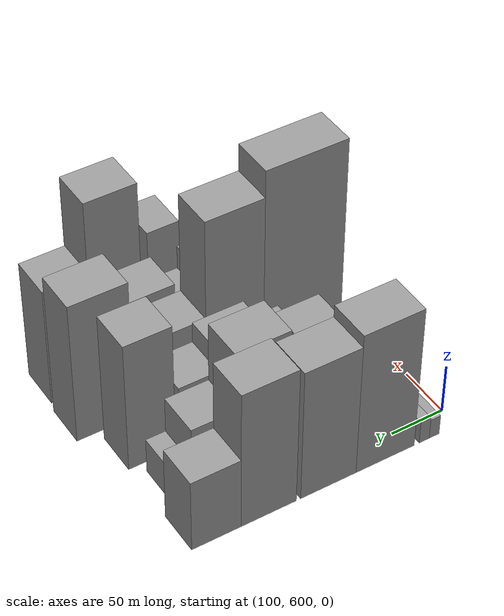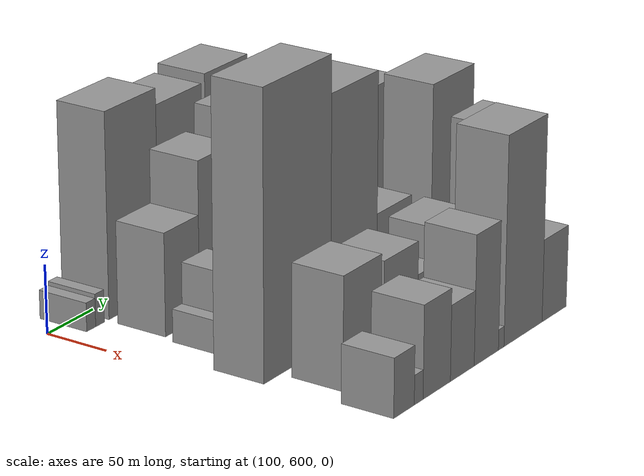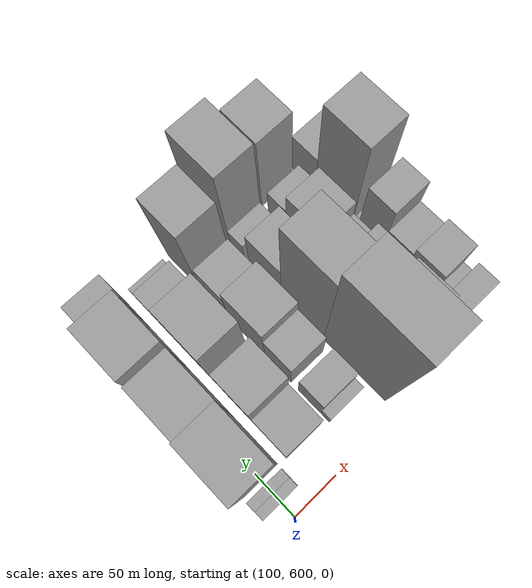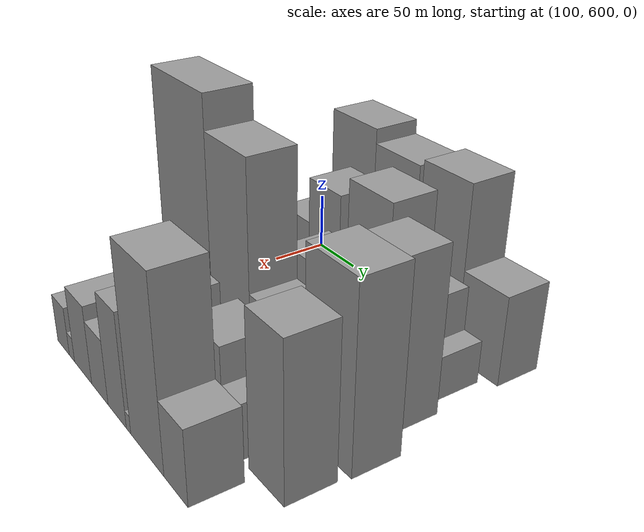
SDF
<sdf version="1.6">
 <world name="default">
  <model name="building_43">
   <static>1</static>
   <pose>100.0000 622.2904 0 0.000000 0.000000 0.000000</pose>
   <link name="link">
    <pose>0 0 10.50 0 0 0</pose>
    <collision name="collision"><geometry><box><size>40.0000 9.8653 21.0000</size></box></geometry></collision>
    <visual name="visual">
     <cast_shadows>0</cast_shadows>
     <geometry><box><size>40.0000 9.8653 21.0000</size></box></geometry>
     <material>
      <script>
       <uri>model://grey_wall/materials/scripts</uri>
       <uri>model://grey_wall/materials/textures</uri>
       <name>vrc/grey_wall</name>
      </script>
     </material>
    </visual>
   </link>
  </model>
  <model name="building_44">
   <static>1</static>
   <pose>100.0000 632.1408 0 0.000000 0.000000 0.000000</pose>
   <link name="link">
    <pose>0 0 12.00 0 0 0</pose>
    <collision name="collision"><geometry><box><size>40.0000 9.8353 24.0000</size></box></geometry></collision>
    <visual name="visual">
     <cast_shadows>0</cast_shadows>
     <geometry><box><size>40.0000 9.8353 24.0000</size></box></geometry>
     <material>
      <script>
       <uri>model://grey_wall/materials/scripts</uri>
       <uri>model://grey_wall/materials/textures</uri>
       <name>vrc/grey_wall</name>
      </script>
     </material>
    </visual>
   </link>
  </model>
  <model name="building_45">
   <static>1</static>
   <pose>100.0000 670.4253 0 0.000000 0.000000 0.000000</pose>
   <link name="link">
    <pose>0 0 75.00 0 0 0</pose>
    <collision name="collision"><geometry><box><size>40.0000 56.7336 150.0000</size></box></geometry></collision>
    <visual name="visual">
     <cast_shadows>0</cast_shadows>
     <geometry><box><size>40.0000 56.7336 150.0000</size></box></geometry>
     <material>
      <script>
       <uri>model://grey_wall/materials/scripts</uri>
       <uri>model://grey_wall/materials/textures</uri>
       <name>vrc/grey_wall</name>
      </script>
     </material>
    </visual>
   </link>
  </model>
  <model name="building_46">
   <static>1</static>
   <pose>100.0000 725.0157 0 0.000000 0.000000 0.000000</pose>
   <link name="link">
    <pose>0 0 69.00 0 0 0</pose>
    <collision name="collision"><geometry><box><size>40.0000 52.4473 138.0000</size></box></geometry></collision>
    <visual name="visual">
     <cast_shadows>0</cast_shadows>
     <geometry><box><size>40.0000 52.4473 138.0000</size></box></geometry>
     <material>
      <script>
       <uri>model://grey_wall/materials/scripts</uri>
       <uri>model://grey_wall/materials/textures</uri>
       <name>vrc/grey_wall</name>
      </script>
     </material>
    </visual>
   </link>
  </model>
  <model name="building_47">
   <static>1</static>
   <pose>100.0000 780.8229 0 0.000000 0.000000 0.000000</pose>
   <link name="link">
    <pose>0 0 72.00 0 0 0</pose>
    <collision name="collision"><geometry><box><size>40.0000 51.1670 144.0000</size></box></geometry></collision>
    <visual name="visual">
     <cast_shadows>0</cast_shadows>
     <geometry><box><size>40.0000 51.1670 144.0000</size></box></geometry>
     <material>
      <script>
       <uri>model://grey_wall/materials/scripts</uri>
       <uri>model://grey_wall/materials/textures</uri>
       <name>vrc/grey_wall</name>
      </script>
     </material>
    </visual>
   </link>
  </model>
  <model name="building_48">
   <static>1</static>
   <pose>100.0000 828.6658 0 0.000000 0.000000 0.000000</pose>
   <link name="link">
    <pose>0 0 37.50 0 0 0</pose>
    <collision name="collision"><geometry><box><size>40.0000 44.5188 75.0000</size></box></geometry></collision>
    <visual name="visual">
     <cast_shadows>0</cast_shadows>
     <geometry><box><size>40.0000 44.5188 75.0000</size></box></geometry>
     <material>
      <script>
       <uri>model://grey_wall/materials/scripts</uri>
       <uri>model://grey_wall/materials/textures</uri>
       <name>vrc/grey_wall</name>
      </script>
     </material>
    </visual>
   </link>
  </model>
  <model name="building_93">
   <static>1</static>
   <pose>149.0000 659.6577 0 0.000000 0.000000 0.000000</pose>
   <link name="link">
    <pose>0 0 37.50 0 0 0</pose>
    <collision name="collision"><geometry><box><size>40.0000 38.9035 75.0000</size></box></geometry></collision>
    <visual name="visual">
     <cast_shadows>0</cast_shadows>
     <geometry><box><size>40.0000 38.9035 75.0000</size></box></geometry>
     <material>
      <script>
       <uri>model://grey_wall/materials/scripts</uri>
       <uri>model://grey_wall/materials/textures</uri>
       <name>vrc/grey_wall</name>
      </script>
     </material>
    </visual>
   </link>
  </model>
  <model name="building_94">
   <static>1</static>
   <pose>149.0000 699.7835 0 0.000000 0.000000 0.000000</pose>
   <link name="link">
    <pose>0 0 57.00 0 0 0</pose>
    <collision name="collision"><geometry><box><size>40.0000 41.3482 114.0000</size></box></geometry></collision>
    <visual name="visual">
     <cast_shadows>0</cast_shadows>
     <geometry><box><size>40.0000 41.3482 114.0000</size></box></geometry>
     <material>
      <script>
       <uri>model://grey_wall/materials/scripts</uri>
       <uri>model://grey_wall/materials/textures</uri>
       <name>vrc/grey_wall</name>
      </script>
     </material>
    </visual>
   </link>
  </model>
  <model name="building_95">
   <static>1</static>
   <pose>149.0000 755.7839 0 0.000000 0.000000 0.000000</pose>
   <link name="link">
    <pose>0 0 66.00 0 0 0</pose>
    <collision name="collision"><geometry><box><size>40.0000 50.6525 132.0000</size></box></geometry></collision>
    <visual name="visual">
     <cast_shadows>0</cast_shadows>
     <geometry><box><size>40.0000 50.6525 132.0000</size></box></geometry>
     <material>
      <script>
       <uri>model://grey_wall/materials/scripts</uri>
       <uri>model://grey_wall/materials/textures</uri>
       <name>vrc/grey_wall</name>
      </script>
     </material>
    </visual>
   </link>
  </model>
  <model name="building_96">
   <static>1</static>
   <pose>149.0000 801.1169 0 0.000000 0.000000 0.000000</pose>
   <link name="link">
    <pose>0 0 36.00 0 0 0</pose>
    <collision name="collision"><geometry><box><size>40.0000 40.0135 72.0000</size></box></geometry></collision>
    <visual name="visual">
     <cast_shadows>0</cast_shadows>
     <geometry><box><size>40.0000 40.0135 72.0000</size></box></geometry>
     <material>
      <script>
       <uri>model://grey_wall/materials/scripts</uri>
       <uri>model://grey_wall/materials/textures</uri>
       <name>vrc/grey_wall</name>
      </script>
     </material>
    </visual>
   </link>
  </model>
  <model name="building_97">
   <static>1</static>
   <pose>149.0000 830.2136 0 0.000000 0.000000 0.000000</pose>
   <link name="link">
    <pose>0 0 18.00 0 0 0</pose>
    <collision name="collision"><geometry><box><size>40.0000 18.1798 36.0000</size></box></geometry></collision>
    <visual name="visual">
     <cast_shadows>0</cast_shadows>
     <geometry><box><size>40.0000 18.1798 36.0000</size></box></geometry>
     <material>
      <script>
       <uri>model://grey_wall/materials/scripts</uri>
       <uri>model://grey_wall/materials/textures</uri>
       <name>vrc/grey_wall</name>
      </script>
     </material>
    </visual>
   </link>
  </model>
  <model name="building_137">
   <static>1</static>
   <pose>198.0000 641.7158 0 0.000000 0.000000 0.000000</pose>
   <link name="link">
    <pose>0 0 12.00 0 0 0</pose>
    <collision name="collision"><geometry><box><size>40.0000 10.9503 24.0000</size></box></geometry></collision>
    <visual name="visual">
     <cast_shadows>0</cast_shadows>
     <geometry><box><size>40.0000 10.9503 24.0000</size></box></geometry>
     <material>
      <script>
       <uri>model://grey_wall/materials/scripts</uri>
       <uri>model://grey_wall/materials/textures</uri>
       <name>vrc/grey_wall</name>
      </script>
     </material>
    </visual>
   </link>
  </model>
  <model name="building_138">
   <static>1</static>
   <pose>198.0000 661.6977 0 0.000000 0.000000 0.000000</pose>
   <link name="link">
    <pose>0 0 27.00 0 0 0</pose>
    <collision name="collision"><geometry><box><size>40.0000 29.0134 54.0000</size></box></geometry></collision>
    <visual name="visual">
     <cast_shadows>0</cast_shadows>
     <geometry><box><size>40.0000 29.0134 54.0000</size></box></geometry>
     <material>
      <script>
       <uri>model://grey_wall/materials/scripts</uri>
       <uri>model://grey_wall/materials/textures</uri>
       <name>vrc/grey_wall</name>
      </script>
     </material>
    </visual>
   </link>
  </model>
  <model name="building_139">
   <static>1</static>
   <pose>198.0000 701.8860 0 0.000000 0.000000 0.000000</pose>
   <link name="link">
    <pose>0 0 33.00 0 0 0</pose>
    <collision name="collision"><geometry><box><size>40.0000 33.3633 66.0000</size></box></geometry></collision>
    <visual name="visual">
     <cast_shadows>0</cast_shadows>
     <geometry><box><size>40.0000 33.3633 66.0000</size></box></geometry>
     <material>
      <script>
       <uri>model://grey_wall/materials/scripts</uri>
       <uri>model://grey_wall/materials/textures</uri>
       <name>vrc/grey_wall</name>
      </script>
     </material>
    </visual>
   </link>
  </model>
  <model name="building_140">
   <static>1</static>
   <pose>198.0000 742.6270 0 0.000000 0.000000 0.000000</pose>
   <link name="link">
    <pose>0 0 43.50 0 0 0</pose>
    <collision name="collision"><geometry><box><size>40.0000 48.1188 87.0000</size></box></geometry></collision>
    <visual name="visual">
     <cast_shadows>0</cast_shadows>
     <geometry><box><size>40.0000 48.1188 87.0000</size></box></geometry>
     <material>
      <script>
       <uri>model://grey_wall/materials/scripts</uri>
       <uri>model://grey_wall/materials/textures</uri>
       <name>vrc/grey_wall</name>
      </script>
     </material>
    </visual>
   </link>
  </model>
  <model name="building_141">
   <static>1</static>
   <pose>198.0000 785.0281 0 0.000000 0.000000 0.000000</pose>
   <link name="link">
    <pose>0 0 33.00 0 0 0</pose>
    <collision name="collision"><geometry><box><size>40.0000 36.6835 66.0000</size></box></geometry></collision>
    <visual name="visual">
     <cast_shadows>0</cast_shadows>
     <geometry><box><size>40.0000 36.6835 66.0000</size></box></geometry>
     <material>
      <script>
       <uri>model://grey_wall/materials/scripts</uri>
       <uri>model://grey_wall/materials/textures</uri>
       <name>vrc/grey_wall</name>
      </script>
     </material>
    </visual>
   </link>
  </model>
  <model name="building_142">
   <static>1</static>
   <pose>198.0000 829.0769 0 0.000000 0.000000 0.000000</pose>
   <link name="link">
    <pose>0 0 67.50 0 0 0</pose>
    <collision name="collision"><geometry><box><size>40.0000 43.4140 135.0000</size></box></geometry></collision>
    <visual name="visual">
     <cast_shadows>0</cast_shadows>
     <geometry><box><size>40.0000 43.4140 135.0000</size></box></geometry>
     <material>
      <script>
       <uri>model://grey_wall/materials/scripts</uri>
       <uri>model://grey_wall/materials/textures</uri>
       <name>vrc/grey_wall</name>
      </script>
     </material>
    </visual>
   </link>
  </model>
  <model name="building_183">
   <static>1</static>
   <pose>247.0000 653.9100 0 0.000000 0.000000 0.000000</pose>
   <link name="link">
    <pose>0 0 102.00 0 0 0</pose>
    <collision name="collision"><geometry><box><size>40.0000 78.0247 204.0000</size></box></geometry></collision>
    <visual name="visual">
     <cast_shadows>0</cast_shadows>
     <geometry><box><size>40.0000 78.0247 204.0000</size></box></geometry>
     <material>
      <script>
       <uri>model://grey_wall/materials/scripts</uri>
       <uri>model://grey_wall/materials/textures</uri>
       <name>vrc/grey_wall</name>
      </script>
     </material>
    </visual>
   </link>
  </model>
  <model name="building_184">
   <static>1</static>
   <pose>247.0000 720.7816 0 0.000000 0.000000 0.000000</pose>
   <link name="link">
    <pose>0 0 88.50 0 0 0</pose>
    <collision name="collision"><geometry><box><size>40.0000 55.7184 177.0000</size></box></geometry></collision>
    <visual name="visual">
     <cast_shadows>0</cast_shadows>
     <geometry><box><size>40.0000 55.7184 177.0000</size></box></geometry>
     <material>
      <script>
       <uri>model://grey_wall/materials/scripts</uri>
       <uri>model://grey_wall/materials/textures</uri>
       <name>vrc/grey_wall</name>
      </script>
     </material>
    </visual>
   </link>
  </model>
  <model name="building_185">
   <static>1</static>
   <pose>247.0000 770.1704 0 0.000000 0.000000 0.000000</pose>
   <link name="link">
    <pose>0 0 37.50 0 0 0</pose>
    <collision name="collision"><geometry><box><size>40.0000 43.0592 75.0000</size></box></geometry></collision>
    <visual name="visual">
     <cast_shadows>0</cast_shadows>
     <geometry><box><size>40.0000 43.0592 75.0000</size></box></geometry>
     <material>
      <script>
       <uri>model://grey_wall/materials/scripts</uri>
       <uri>model://grey_wall/materials/textures</uri>
       <name>vrc/grey_wall</name>
      </script>
     </material>
    </visual>
   </link>
  </model>
  <model name="building_186">
   <static>1</static>
   <pose>247.0000 807.6648 0 0.000000 0.000000 0.000000</pose>
   <link name="link">
    <pose>0 0 19.50 0 0 0</pose>
    <collision name="collision"><geometry><box><size>40.0000 19.9296 39.0000</size></box></geometry></collision>
    <visual name="visual">
     <cast_shadows>0</cast_shadows>
     <geometry><box><size>40.0000 19.9296 39.0000</size></box></geometry>
     <material>
      <script>
       <uri>model://grey_wall/materials/scripts</uri>
       <uri>model://grey_wall/materials/textures</uri>
       <name>vrc/grey_wall</name>
      </script>
     </material>
    </visual>
   </link>
  </model>
  <model name="building_187">
   <static>1</static>
   <pose>247.0000 844.2778 0 0.000000 0.000000 0.000000</pose>
   <link name="link">
    <pose>0 0 73.50 0 0 0</pose>
    <collision name="collision"><geometry><box><size>40.0000 53.2964 147.0000</size></box></geometry></collision>
    <visual name="visual">
     <cast_shadows>0</cast_shadows>
     <geometry><box><size>40.0000 53.2964 147.0000</size></box></geometry>
     <material>
      <script>
       <uri>model://grey_wall/materials/scripts</uri>
       <uri>model://grey_wall/materials/textures</uri>
       <name>vrc/grey_wall</name>
      </script>
     </material>
    </visual>
   </link>
  </model>
  <model name="building_230">
   <static>1</static>
   <pose>296.0000 656.2849 0 0.000000 0.000000 0.000000</pose>
   <link name="link">
    <pose>0 0 40.50 0 0 0</pose>
    <collision name="collision"><geometry><box><size>40.0000 44.8407 81.0000</size></box></geometry></collision>
    <visual name="visual">
     <cast_shadows>0</cast_shadows>
     <geometry><box><size>40.0000 44.8407 81.0000</size></box></geometry>
     <material>
      <script>
       <uri>model://grey_wall/materials/scripts</uri>
       <uri>model://grey_wall/materials/textures</uri>
       <name>vrc/grey_wall</name>
      </script>
     </material>
    </visual>
   </link>
  </model>
  <model name="building_231">
   <static>1</static>
   <pose>296.0000 702.4700 0 0.000000 0.000000 0.000000</pose>
   <link name="link">
    <pose>0 0 37.50 0 0 0</pose>
    <collision name="collision"><geometry><box><size>40.0000 41.5296 75.0000</size></box></geometry></collision>
    <visual name="visual">
     <cast_shadows>0</cast_shadows>
     <geometry><box><size>40.0000 41.5296 75.0000</size></box></geometry>
     <material>
      <script>
       <uri>model://grey_wall/materials/scripts</uri>
       <uri>model://grey_wall/materials/textures</uri>
       <name>vrc/grey_wall</name>
      </script>
     </material>
    </visual>
   </link>
  </model>
  <model name="building_232">
   <static>1</static>
   <pose>296.0000 736.0231 0 0.000000 0.000000 0.000000</pose>
   <link name="link">
    <pose>0 0 25.50 0 0 0</pose>
    <collision name="collision"><geometry><box><size>40.0000 25.5765 51.0000</size></box></geometry></collision>
    <visual name="visual">
     <cast_shadows>0</cast_shadows>
     <geometry><box><size>40.0000 25.5765 51.0000</size></box></geometry>
     <material>
      <script>
       <uri>model://grey_wall/materials/scripts</uri>
       <uri>model://grey_wall/materials/textures</uri>
       <name>vrc/grey_wall</name>
      </script>
     </material>
    </visual>
   </link>
  </model>
  <model name="building_233">
   <static>1</static>
   <pose>296.0000 771.1816 0 0.000000 0.000000 0.000000</pose>
   <link name="link">
    <pose>0 0 37.50 0 0 0</pose>
    <collision name="collision"><geometry><box><size>40.0000 44.7406 75.0000</size></box></geometry></collision>
    <visual name="visual">
     <cast_shadows>0</cast_shadows>
     <geometry><box><size>40.0000 44.7406 75.0000</size></box></geometry>
     <material>
      <script>
       <uri>model://grey_wall/materials/scripts</uri>
       <uri>model://grey_wall/materials/textures</uri>
       <name>vrc/grey_wall</name>
      </script>
     </material>
    </visual>
   </link>
  </model>
  <model name="building_234">
   <static>1</static>
   <pose>296.0000 805.5248 0 0.000000 0.000000 0.000000</pose>
   <link name="link">
    <pose>0 0 22.50 0 0 0</pose>
    <collision name="collision"><geometry><box><size>40.0000 23.9457 45.0000</size></box></geometry></collision>
    <visual name="visual">
     <cast_shadows>0</cast_shadows>
     <geometry><box><size>40.0000 23.9457 45.0000</size></box></geometry>
     <material>
      <script>
       <uri>model://grey_wall/materials/scripts</uri>
       <uri>model://grey_wall/materials/textures</uri>
       <name>vrc/grey_wall</name>
      </script>
     </material>
    </visual>
   </link>
  </model>
  <model name="building_235">
   <static>1</static>
   <pose>296.0000 847.3310 0 0.000000 0.000000 0.000000</pose>
   <link name="link">
    <pose>0 0 61.50 0 0 0</pose>
    <collision name="collision"><geometry><box><size>40.0000 41.6666 123.0000</size></box></geometry></collision>
    <visual name="visual">
     <cast_shadows>0</cast_shadows>
     <geometry><box><size>40.0000 41.6666 123.0000</size></box></geometry>
     <material>
      <script>
       <uri>model://grey_wall/materials/scripts</uri>
       <uri>model://grey_wall/materials/textures</uri>
       <name>vrc/grey_wall</name>
      </script>
     </material>
    </visual>
   </link>
  </model>
  <model name="building_278">
   <static>1</static>
   <pose>345.0000 630.1956 0 0.000000 0.000000 0.000000</pose>
   <link name="link">
    <pose>0 0 21.00 0 0 0</pose>
    <collision name="collision"><geometry><box><size>40.0000 24.2849 42.0000</size></box></geometry></collision>
    <visual name="visual">
     <cast_shadows>0</cast_shadows>
     <geometry><box><size>40.0000 24.2849 42.0000</size></box></geometry>
     <material>
      <script>
       <uri>model://grey_wall/materials/scripts</uri>
       <uri>model://grey_wall/materials/textures</uri>
       <name>vrc/grey_wall</name>
      </script>
     </material>
    </visual>
   </link>
  </model>
  <model name="building_279">
   <static>1</static>
   <pose>345.0000 647.5845 0 0.000000 0.000000 0.000000</pose>
   <link name="link">
    <pose>0 0 10.50 0 0 0</pose>
    <collision name="collision"><geometry><box><size>40.0000 10.4929 21.0000</size></box></geometry></collision>
    <visual name="visual">
     <cast_shadows>0</cast_shadows>
     <geometry><box><size>40.0000 10.4929 21.0000</size></box></geometry>
     <material>
      <script>
       <uri>model://grey_wall/materials/scripts</uri>
       <uri>model://grey_wall/materials/textures</uri>
       <name>vrc/grey_wall</name>
      </script>
     </material>
    </visual>
   </link>
  </model>
  <model name="building_280">
   <static>1</static>
   <pose>345.0000 669.4406 0 0.000000 0.000000 0.000000</pose>
   <link name="link">
    <pose>0 0 33.00 0 0 0</pose>
    <collision name="collision"><geometry><box><size>40.0000 33.2191 66.0000</size></box></geometry></collision>
    <visual name="visual">
     <cast_shadows>0</cast_shadows>
     <geometry><box><size>40.0000 33.2191 66.0000</size></box></geometry>
     <material>
      <script>
       <uri>model://grey_wall/materials/scripts</uri>
       <uri>model://grey_wall/materials/textures</uri>
       <name>vrc/grey_wall</name>
      </script>
     </material>
    </visual>
   </link>
  </model>
  <model name="building_281">
   <static>1</static>
   <pose>345.0000 700.8577 0 0.000000 0.000000 0.000000</pose>
   <link name="link">
    <pose>0 0 27.00 0 0 0</pose>
    <collision name="collision"><geometry><box><size>40.0000 29.6151 54.0000</size></box></geometry></collision>
    <visual name="visual">
     <cast_shadows>0</cast_shadows>
     <geometry><box><size>40.0000 29.6151 54.0000</size></box></geometry>
     <material>
      <script>
       <uri>model://grey_wall/materials/scripts</uri>
       <uri>model://grey_wall/materials/textures</uri>
       <name>vrc/grey_wall</name>
      </script>
     </material>
    </visual>
   </link>
  </model>
  <model name="building_282">
   <static>1</static>
   <pose>345.0000 731.0586 0 0.000000 0.000000 0.000000</pose>
   <link name="link">
    <pose>0 0 46.50 0 0 0</pose>
    <collision name="collision"><geometry><box><size>40.0000 30.7867 93.0000</size></box></geometry></collision>
    <visual name="visual">
     <cast_shadows>0</cast_shadows>
     <geometry><box><size>40.0000 30.7867 93.0000</size></box></geometry>
     <material>
      <script>
       <uri>model://grey_wall/materials/scripts</uri>
       <uri>model://grey_wall/materials/textures</uri>
       <name>vrc/grey_wall</name>
      </script>
     </material>
    </visual>
   </link>
  </model>
  <model name="building_283">
   <static>1</static>
   <pose>345.0000 750.0242 0 0.000000 0.000000 0.000000</pose>
   <link name="link">
    <pose>0 0 7.50 0 0 0</pose>
    <collision name="collision"><geometry><box><size>40.0000 7.1446 15.0000</size></box></geometry></collision>
    <visual name="visual">
     <cast_shadows>0</cast_shadows>
     <geometry><box><size>40.0000 7.1446 15.0000</size></box></geometry>
     <material>
      <script>
       <uri>model://grey_wall/materials/scripts</uri>
       <uri>model://grey_wall/materials/textures</uri>
       <name>vrc/grey_wall</name>
      </script>
     </material>
    </visual>
   </link>
  </model>
  <model name="building_284">
   <static>1</static>
   <pose>345.0000 778.6059 0 0.000000 0.000000 0.000000</pose>
   <link name="link">
    <pose>0 0 75.00 0 0 0</pose>
    <collision name="collision"><geometry><box><size>40.0000 50.0188 150.0000</size></box></geometry></collision>
    <visual name="visual">
     <cast_shadows>0</cast_shadows>
     <geometry><box><size>40.0000 50.0188 150.0000</size></box></geometry>
     <material>
      <script>
       <uri>model://grey_wall/materials/scripts</uri>
       <uri>model://grey_wall/materials/textures</uri>
       <name>vrc/grey_wall</name>
      </script>
     </material>
    </visual>
   </link>
  </model>
  <model name="building_285">
   <static>1</static>
   <pose>345.0000 819.9710 0 0.000000 0.000000 0.000000</pose>
   <link name="link">
    <pose>0 0 30.00 0 0 0</pose>
    <collision name="collision"><geometry><box><size>40.0000 32.7112 60.0000</size></box></geometry></collision>
    <visual name="visual">
     <cast_shadows>0</cast_shadows>
     <geometry><box><size>40.0000 32.7112 60.0000</size></box></geometry>
     <material>
      <script>
       <uri>model://grey_wall/materials/scripts</uri>
       <uri>model://grey_wall/materials/textures</uri>
       <name>vrc/grey_wall</name>
      </script>
     </material>
    </visual>
   </link>
  </model>
 </world>
</sdf>
